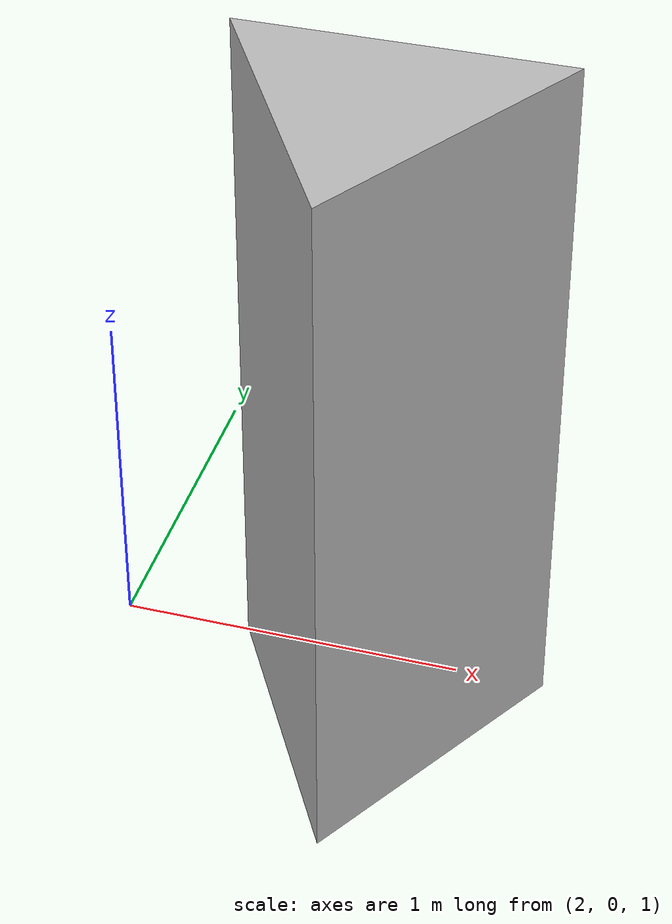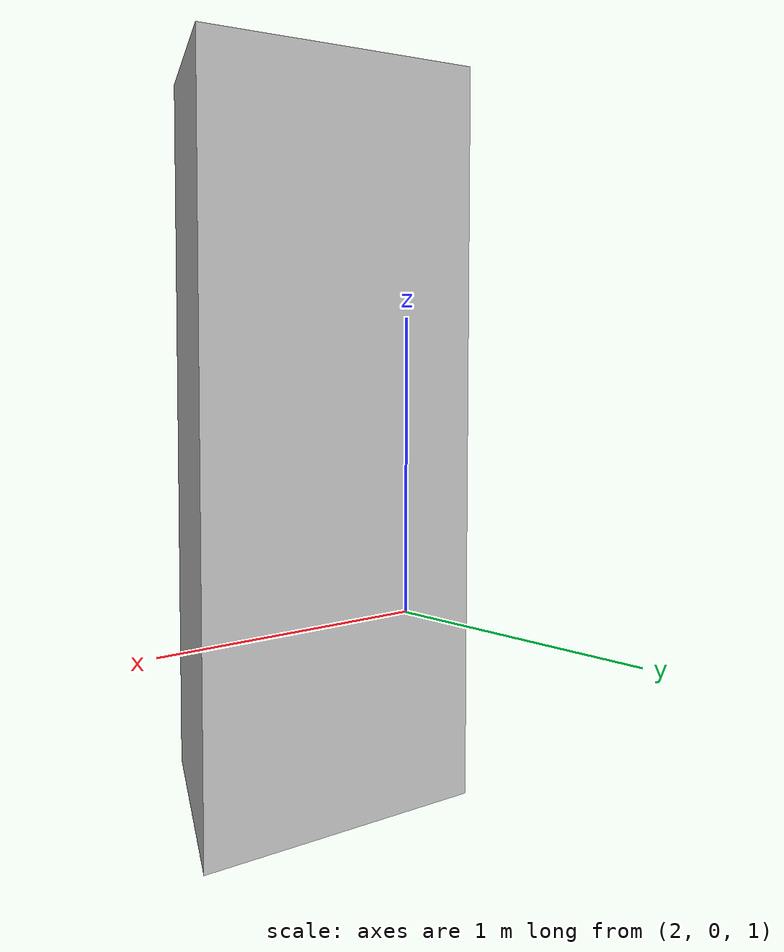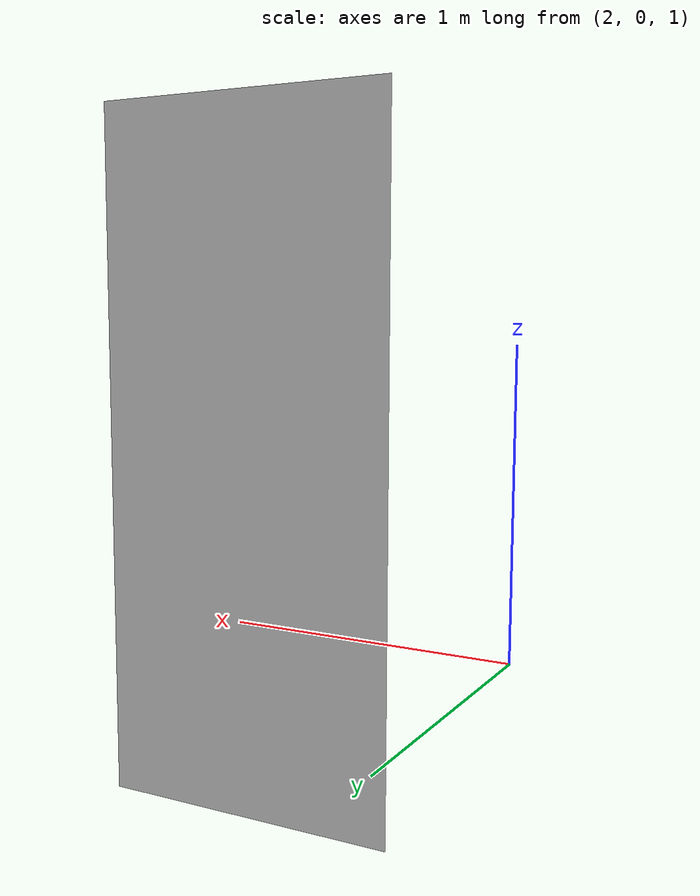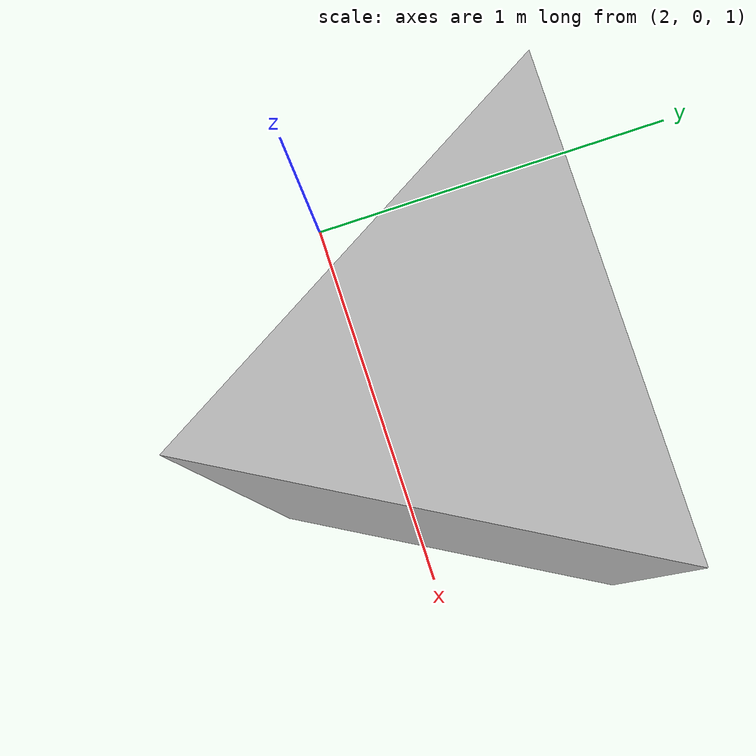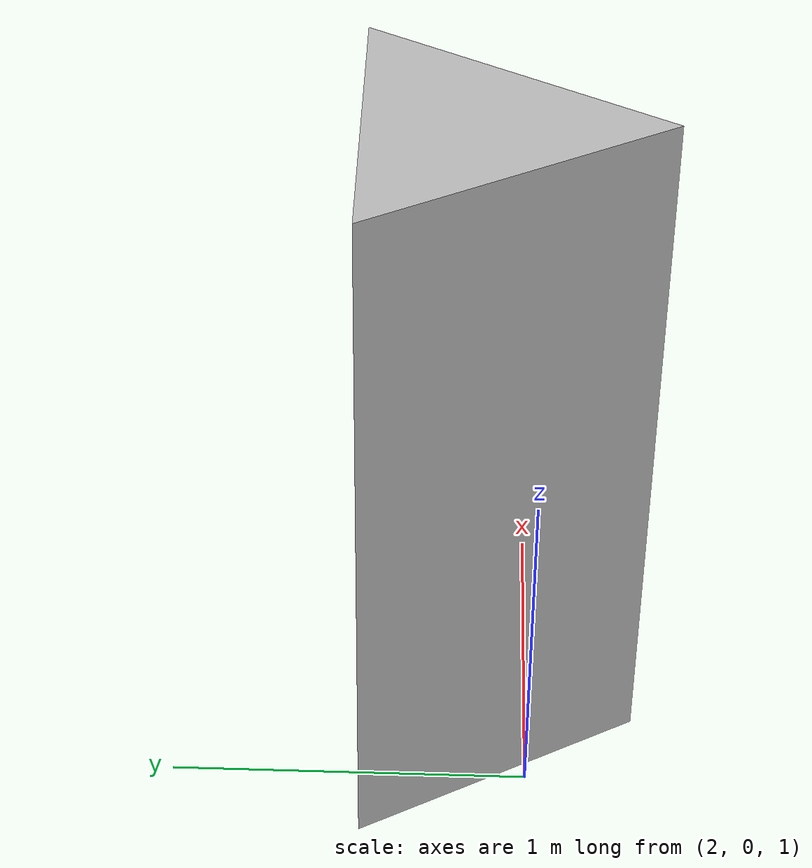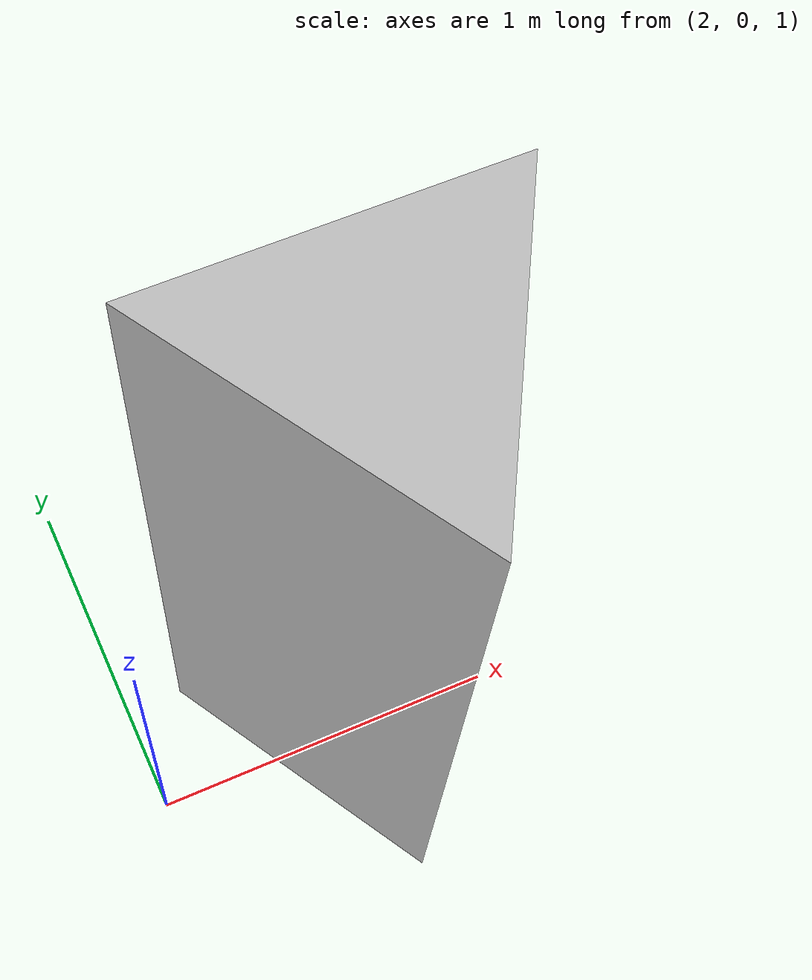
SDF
<?xml version="1.0" ?>
<sdf version="1.7">
  <model name="Prism">
    <pose>0 0 0.5 0 0 0</pose>
    <static>true</static>
    <link name="link">
      <collision name="collision">
        <geometry>
          <mesh>
            <uri>model://prism_model/meshes/Triangular_Prism_v2.obj</uri>
            <scale>0.1 0.1 0.1</scale>
          </mesh>
        </geometry>
      </collision>

      <visual name="visual">
        <geometry>
          <mesh>
            <uri>model://prism_model/meshes/Triangular_Prism_v2.obj</uri>
            <scale>0.1 0.1 0.1</scale>
          </mesh>
        </geometry>
      </visual>
    </link>
  </model>
</sdf>
